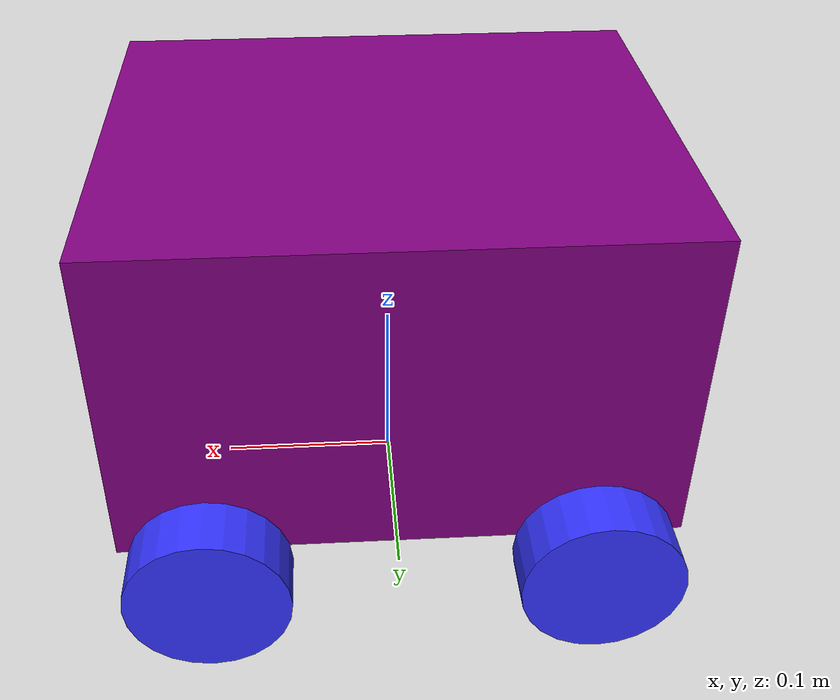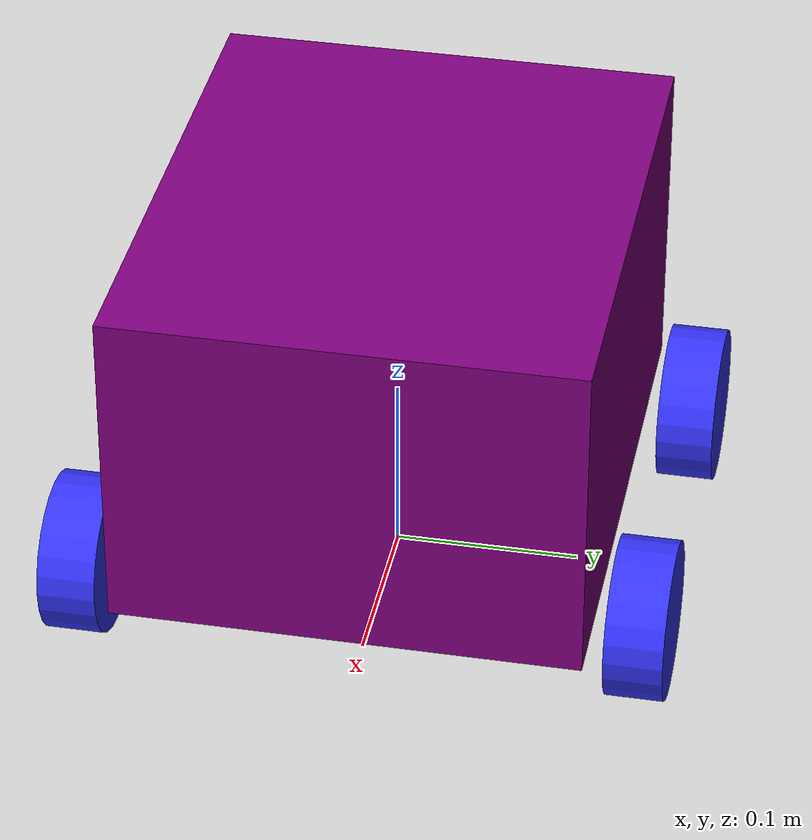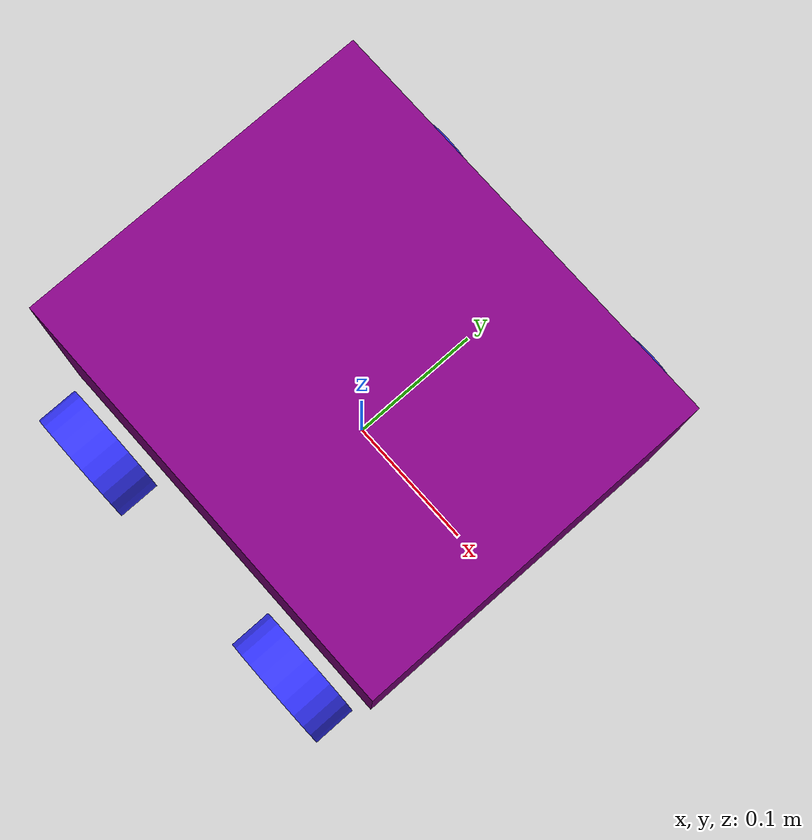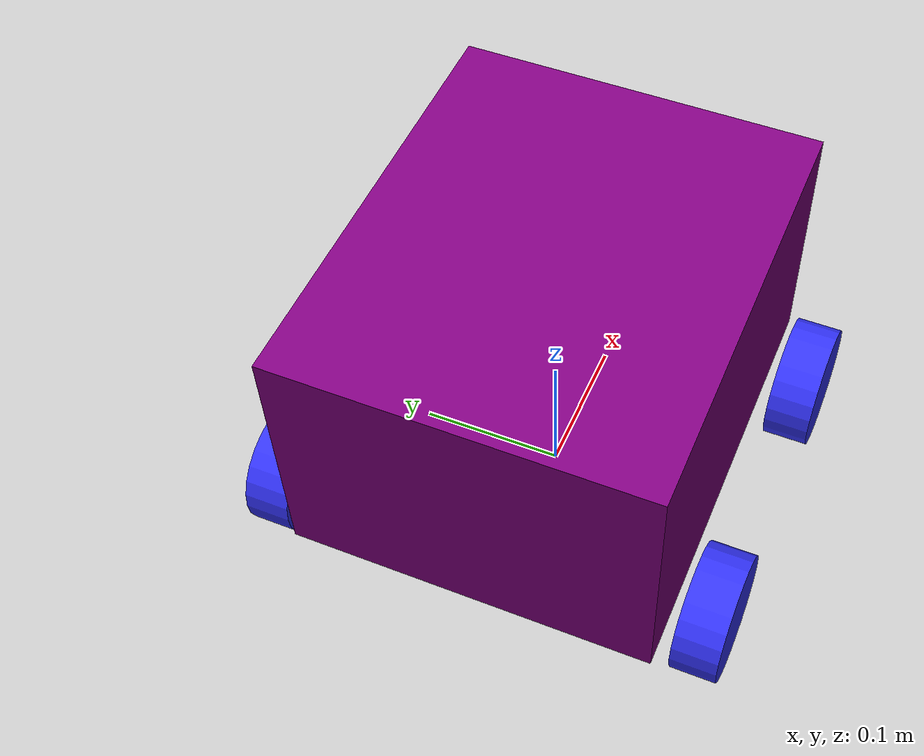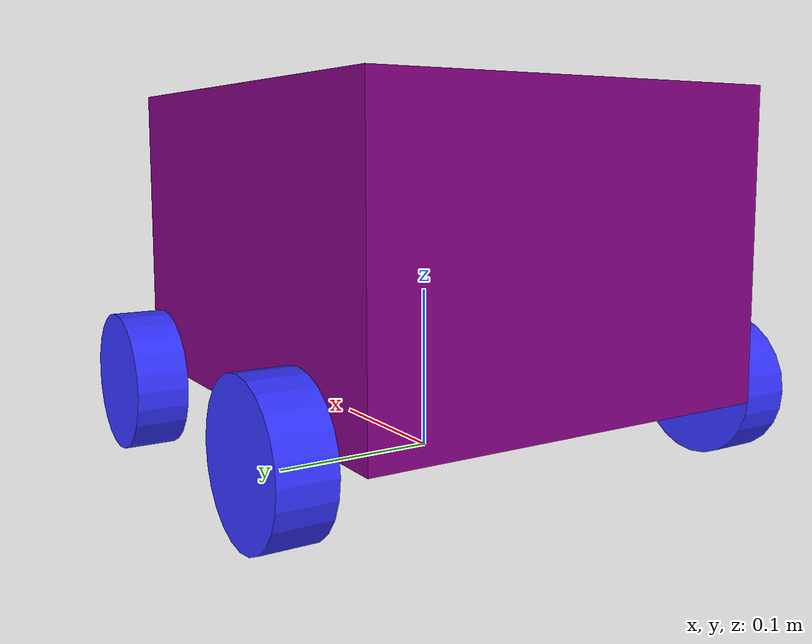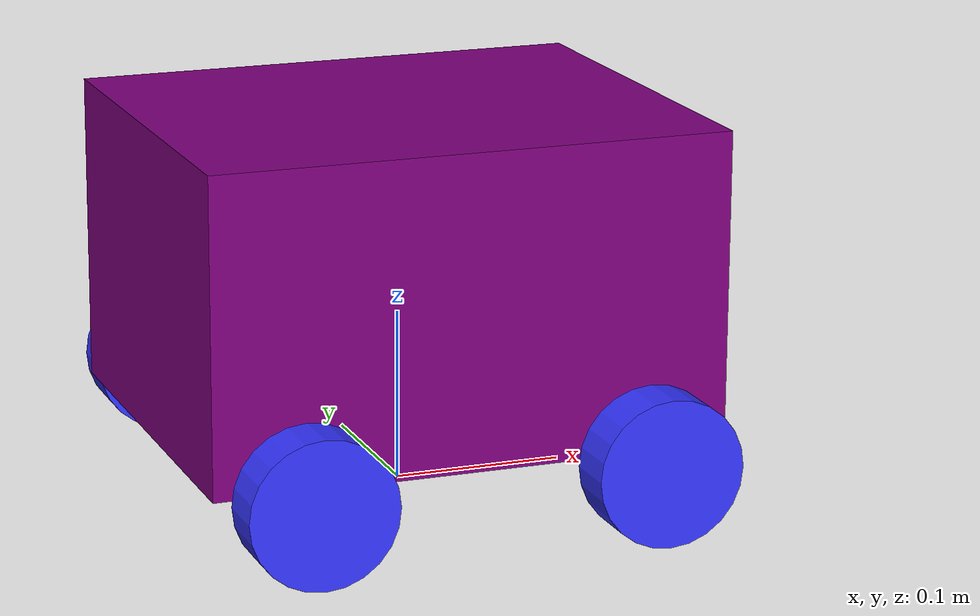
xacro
<?xml version="1.0"?>
<robot xmlns:xacro="http://www.ros.org/wiki/xacro">

    <xacro:include filename="inertial_macro.xacro"/>

    <material name="white">
        <color rgba="1 1 1 1"/>
    </material>

    <material name="blue">
        <color rgba="0.2 0.2 1 1"/>
    </material>

    <material name="black">
        <color rgba="0 0 0 1"/>
    </material>

    <material name="red">
        <color rgba="1 0 0 1"/>
    </material>

    <material name="purple">
        <color rgba="0.5 0 0.5 1"/>
    </material>

    <link name="base_link">
    </link>

    <link name="base_footprint">
    </link>

    <joint name="base_footprint_joint" type="fixed">
        <parent link="base_footprint"/>
        <child link="base_link"/>
        <!-- FIX: Offset changed to positive so base_link is elevated properly above floor grid -->
        <origin xyz="0 0 0.0425" rpy="0 0 0"/>
    </joint>

    <!-- CHASSIS -->

    <joint name="chassis_joint" type="fixed">
        <parent link="base_link"/>
        <child link="chassis"/>
        <origin xyz="-0.15 0 0"/>
    </joint>

    <link name="chassis">
        <visual>
            <origin xyz="0.15 0 0.09" rpy="0 0 0"/>
            <geometry>
                <box size="0.3 0.25 0.18"/>
            </geometry>
            <material name="purple"/>
        </visual>

        <collision>
            <origin xyz="0.15 0 0.12" rpy="0 0 0"/>
            <geometry>
                <box size="0.3 0.25 0.24"/>
            </geometry>
            <material name="white"/>
        </collision>

        <xacro:inertial_box mass="2.7" x="0.3" y="0.25" z="0.24">
            <origin xyz="0.15 0 0.12" rpy="0 0 0"/>
        </xacro:inertial_box>
    </link>
    <gazebo reference="chassis">
    </gazebo>

    <!-- WHEELS-->
    <!-- FRONT LEFT WHEEL -->

    <joint name="front_left_wheel_joint" type="continuous">
        <parent link="base_link"/>
        <child link="front_left_wheel"/>
        <origin xyz="0.10 0.15 0" rpy="-${pi/2} 0 0"/>
        <axis xyz="0 0 1"/>
        <limit effort="1" velocity="10"/>
    </joint>

    <link name="front_left_wheel">
        <visual>
            <geometry>
                <cylinder length="0.031" radius="0.0425" />
            </geometry>
            <material name="blue"/>
        </visual>

        <collision>
            <geometry>
                <sphere radius="0.0425" />
            </geometry>
            <material name="blue"/>
        </collision>

        <xacro:inertial_cylinder mass="0.054" length="0.031" radius="0.0425">
            <origin xyz="0 0 0" rpy="0 0 0"/>
        </xacro:inertial_cylinder>
    </link>

    <gazebo reference="front_left_wheel">
    </gazebo>

    <!-- FRONT RIGHT WHEEL -->

    <joint name="front_right_wheel_joint" type="continuous">
        <parent link="base_link"/>
        <child link="front_right_wheel"/>
        <origin xyz="0.10 -0.15 0" rpy="${pi/2} 0 0"/>
        <axis xyz="0 0 -1"/>
        <limit effort="1" velocity="10"/>
    </joint>

    <link name="front_right_wheel">
        <visual>
            <geometry>
                <cylinder length="0.031" radius="0.0425" />
            </geometry>
            <material name="blue"/>
        </visual>

        <collision>
            <geometry>
                <sphere radius="0.0425" />
            </geometry>
            <material name="blue"/>
        </collision>

        <xacro:inertial_cylinder mass="0.054" length="0.031" radius="0.0425">
            <origin xyz="0 0 0" rpy="0 0 0"/>
        </xacro:inertial_cylinder>

    </link>

    <gazebo reference="front_right_wheel">
    </gazebo>

    <!-- BACK LEFT WHEEL -->
    <joint name="back_left_wheel_joint" type="continuous">
        <parent link="base_link"/>
        <child link="back_left_wheel"/>
        <origin xyz="-0.10 0.15 0" rpy="-${pi/2} 0 0"/>
        <axis xyz="0 0 1"/>
        <limit effort="1" velocity="10"/>

    </joint>

    <link name="back_left_wheel">
        <visual>
            <geometry>
                <cylinder length="0.031" radius="0.0425" />
            </geometry>
            <material name="blue"/>
        </visual>

        <collision>
            <geometry>
                <sphere  radius="0.0425" />
            </geometry>
            <material name="blue"/>
        </collision>

         <xacro:inertial_cylinder mass="0.054" length="0.031" radius="0.0425">
            <origin xyz="0 0 0" rpy="0 0 0"/>
        </xacro:inertial_cylinder>
    </link>

    <gazebo reference="back_left_wheel">
    </gazebo>

    <!-- BACK RIGHT WHEEL -->
    <joint name="back_right_wheel_joint" type="continuous">
        <parent link="base_link"/>
        <child link="back_right_wheel"/>
        <origin xyz="-0.10 -0.15 0" rpy="${pi/2} 0 0"/>
        <axis xyz="0 0 -1"/>
        <limit effort="1" velocity="10"/>
    </joint>

    <link name="back_right_wheel">
        <visual>
            <geometry>
                <cylinder length="0.031" radius="0.0425" />
            </geometry>
            <material name="blue"/>
        </visual>

        <collision>
            <geometry>
                <sphere radius="0.0425" />
            </geometry>
            <material name="blue"/>
        </collision>

         <xacro:inertial_cylinder mass="0.054" length="0.031" radius="0.0425">
            <origin xyz="0 0 0" rpy="0 0 0"/>
        </xacro:inertial_cylinder>
    </link>

    <gazebo reference="back_right_wheel">
    </gazebo>

</robot>

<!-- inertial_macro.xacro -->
<robot xmlns:xacro="http://www.ros.org/wiki/xacro" name="robot">

    <!-- Specify some standard inertial calculations -->
    <xacro:macro name="inertial_box" params="mass x y z *origin">
        <inertial>
            <xacro:insert_block name="origin"/>
            <mass value="${mass}" />
            <inertia ixx="${(1/12) * mass * (y*y+z*z)}" ixy="0.0" ixz="0.0"
                    iyy="${(1/12) * mass * (x*x+z*z)}" iyz="0.0"
                    izz="${(1/12) * mass * (x*x+y*y)}" />
        </inertial>
    </xacro:macro>

    <xacro:macro name="inertial_cylinder" params="mass length radius *origin">
        <inertial>
            <xacro:insert_block name="origin"/>
            <mass value="${mass}" />
            <inertia ixx="${(1/12) * mass * (3*radius*radius + length*length)}" ixy="0.0" ixz="0.0"
                    iyy="${(1/12) * mass * (3*radius*radius + length*length)}" iyz="0.0"
                    izz="${(1/2) * mass * (radius*radius)}" />
        </inertial>
    </xacro:macro>

    <xacro:macro name="inertial_sphere" params="mass radius *origin">
        <inertial>
            <xacro:insert_block name="origin"/>
            <mass value="${mass}" />
            <inertia ixx="${(2/5) * mass * (radius*radius)}" ixy="0.0" ixz="0.0"
                    iyy="${(2/5) * mass * (radius*radius)}" iyz="0.0"
                    izz="${(2/5) * mass * (radius*radius)}"/>
        </inertial>
        </xacro:macro>
</robot>
